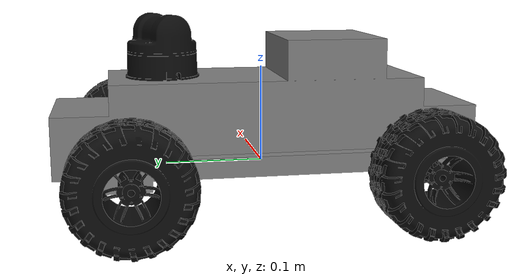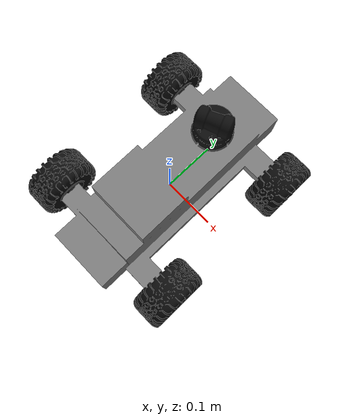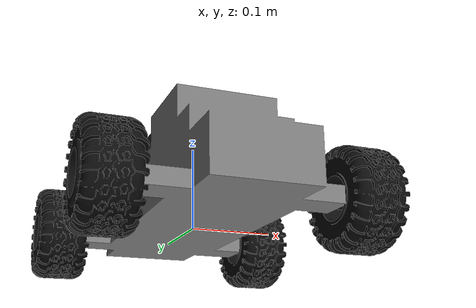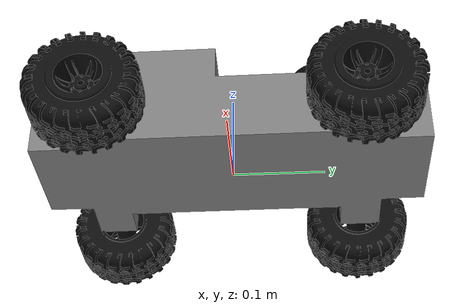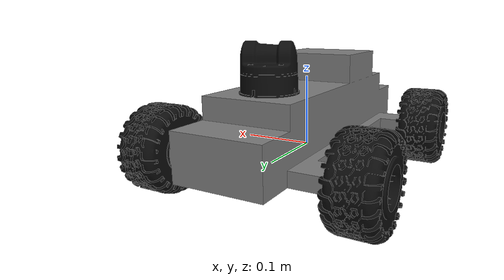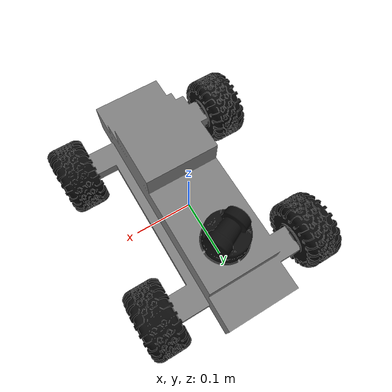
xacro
<?xml version="1.0"?>
<robot xmlns:xacro="http://www.ros.org/wiki/xacro"  name="redcat_car">

    <xacro:arg name="HW_mode" default="mock"/>

    <xacro:include filename="robot_core_diff.xacro"/>
    <xacro:include filename="sensors.xacro"/>

    <xacro:include filename="ros2_control.xacro"/>

    <!-- XACRO to handle multiple ros2_control hardware_interface plugins -->
    <xacro:ros2_control HW_mode="$(arg HW_mode)"/>

</robot>

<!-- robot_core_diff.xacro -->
<robot xmlns:xacro="http://www.ros.org/wiki/xacro">

    <material name="grey">
        <color rgba="0.5 0.5 0.5 1"/>
    </material>

    <material name="black">
        <color rgba="0.05 0.05 0.05 1"/>
    </material>

    <xacro:property name="scale_factor" value="0.001 0.001 0.001"/>

    <!-- ***************************************** Base ******************************************* -->

    <link name="base_link"/>
    <link name="base_footprint"/>

    <joint name="base_link_joint" type="fixed">
        <parent link="base_link"/>
        <child link="base_footprint"/>
        <origin xyz="0 0 0" rpy="0 0 0"/>
    </joint>

    <joint name="chassis_joint" type="fixed">
        <parent link="base_footprint"/>
        <child link="chassis"/>
        <origin xyz="0 0 0" rpy="0 0 0"/>
    </joint>

    <link name="chassis">
        <visual>
            <origin xyz="0 0 0" rpy="0 0 0"/>
            <geometry>
                <mesh filename="package://redcat/meshes/car_body.stl" scale="${scale_factor}"/>
            </geometry>
            <material name="grey"/>
        </visual>
        <collision>
            <origin xyz="0 0 0" rpy="0 0 0"/>
            <geometry>
                <mesh filename="package://redcat/meshes/collision/car_body.stl" scale="${scale_factor}"/>
            </geometry>
        </collision>
    </link>

    <!-- ********************************* Front  Drive  ****************************************** -->

    <joint name="fl_wheel_joint" type="continuous">
        <parent link="chassis"/>
        <child link="fl_wheel"/>
        <origin xyz="-0.1125 0.1405 0.0121" rpy="0 -${pi/2} 0"/>
        <axis xyz="0 0 1"/>
    </joint>

    <joint name="fr_wheel_joint" type="continuous">
        <parent link="chassis"/>
        <child link="fr_wheel"/>
        <origin xyz="0.1125 0.1405 0.0121" rpy="0 ${pi/2} 0"/>
        <axis xyz="0 0 -1"/>
    </joint>

    <link name="fl_wheel">
        <visual>
            <origin xyz="0 0 0" rpy="0 0 0"/>
            <geometry>
                <mesh filename="package://redcat/meshes/wheel.stl" scale="${scale_factor}"/>
            </geometry>
            <material name="black"/>
        </visual>
        <collision>
            <origin xyz="0 0 0" rpy="0 0 0"/>
            <geometry>
                <mesh filename="package://redcat/meshes/collision/wheel.stl" scale="${scale_factor}"/>
            </geometry>
        </collision>
    </link>

    <link name="fr_wheel">
        <visual>
            <origin xyz="0 0 0" rpy="0 0 0"/>
            <geometry>
                <mesh filename="package://redcat/meshes/wheel.stl" scale="${scale_factor}"/>
            </geometry>
            <material name="black"/>
        </visual>
        <collision>
            <origin xyz="0 0 0" rpy="0 0 0"/>
            <geometry>
                <mesh filename="package://redcat/meshes/collision/wheel.stl" scale="${scale_factor}"/>
            </geometry>
        </collision>
    </link>

    <!-- ********************************* Rear Drive  ******************************************** -->

    <joint name="rl_wheel_joint" type="continuous">
        <parent link="chassis"/>
        <child link="rl_wheel"/>
        <origin xyz="-0.1125 -0.1405 0.0121" rpy="0 -${pi/2} 0"/>
        <axis xyz="0 0 1"/>
    </joint>

    <joint name="rr_wheel_joint" type="continuous">
        <parent link="chassis"/>
        <child link="rr_wheel"/>
        <origin xyz="0.1125 -0.1405 0.0121" rpy="0 ${pi/2} 0"/>
        <axis xyz="0 0 -1"/>
    </joint>

    <link name="rl_wheel">
        <visual>
            <origin xyz="0 0 0" rpy="0 0 0"/>
            <geometry>
                <mesh filename="package://redcat/meshes/wheel.stl" scale="${scale_factor}"/>
            </geometry>
            <material name="black"/>
        </visual>
        <collision>
            <origin xyz="0 0 0" rpy="0 0 0"/>
            <geometry>
                <mesh filename="package://redcat/meshes/collision/wheel.stl" scale="${scale_factor}"/>
            </geometry>
        </collision>
    </link>

    <link name="rr_wheel">
        <visual>
            <origin xyz="0 0 0" rpy="0 0 0"/>
            <geometry>
                <mesh filename="package://redcat/meshes/wheel.stl" scale="${scale_factor}"/>
            </geometry>
            <material name="black"/>
        </visual>
        <collision>
            <origin xyz="0 0 0" rpy="0 0 0"/>
            <geometry>
                <mesh filename="package://redcat/meshes/collision/wheel.stl" scale="${scale_factor}"/>
            </geometry>
        </collision>
    </link>

</robot>

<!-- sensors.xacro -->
<robot xmlns:xacro="http://www.ros.org/wiki/xacro" >

    <!-- ************************************ Unitree L2  ***************************************** -->

    <link name="unitree_L2">
        <visual>
            <origin xyz="0 0 0" rpy="0 0 0"/>
            <geometry>
                <mesh filename="package://redcat/meshes/L2_lidar.stl" scale="${scale_factor}"/>
            </geometry>
            <material name="black"/>
        </visual>
        <collision>
            <origin xyz="0 0 0" rpy="0 0 0"/>
            <geometry>
                <mesh filename="package://redcat/meshes/L2_lidar.stl" scale="${scale_factor}"/>
            </geometry>
        </collision>
    </link>

    <joint name="unitree_L2_joint" type="fixed">
        <parent link="chassis"/>
        <child link="unitree_L2"/>
        <origin xyz="0 0.1026 0.0915" rpy="0 0 0"/>
    </joint>

</robot>
